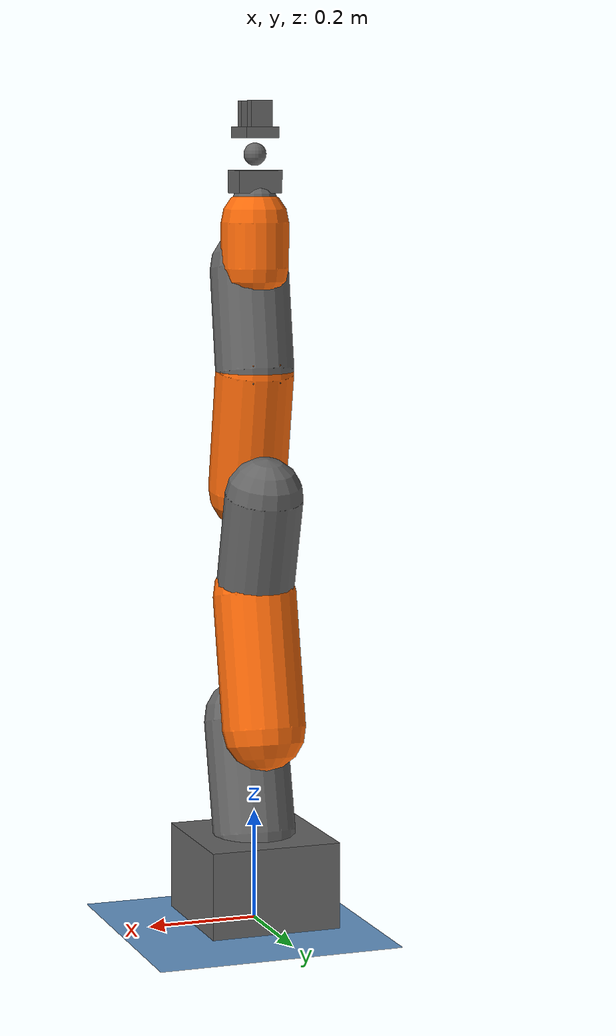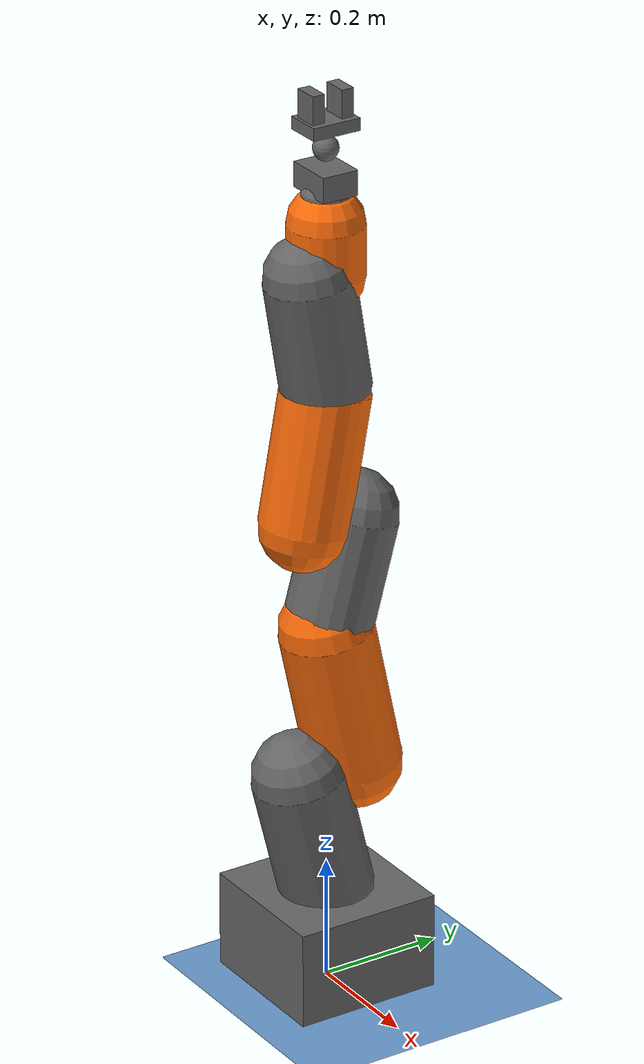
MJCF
<mujoco model="robocrane_mjx_simplified">

    <compiler autolimits="true" angle="radian" />

    <option timestep="0.001" gravity="0 0 -9.81" integrator="implicitfast" cone="elliptic" jacobian="sparse" />

    <statistic meansize="0.03" extent="0.3" center="0.3 0 0" />
    <default>
        <geom type="capsule"/>

        <default class="cardan">
            <joint damping="0.01" limited="true" range="-1.5708 1.5708" />
        </default>
    </default>

    <asset>
        <texture name="groundplane" type="2d" builtin="checker" rgb1="0.5 0.7 0.9" rgb2="0.3 0.5 0.7" mark="edge" markrgb="0.9 0.9 0.9" width="300" height="300" />
        <material name="groundplane" texture="groundplane" texrepeat="5 5" texuniform="true" reflectance="0.4" />
        <material name="orange" rgba="1 0.4235 0.03922 1" />
        <material name="gray" rgba="0.4 0.4 0.4 1" />
        <material name="gripper" rgba="0.2 0.8 0.2 1" />
    </asset>

    <worldbody>
        <body name="ground" mocap="false" pos="0 0 0">
            <!-- Ground plane -->
            <geom name="floor" type="plane" size="0 0 0.05" material="groundplane" />
            <light directional="true" pos="0 0 1.5" dir="0 0 -1" />

            <!-- IIWA Robot - matching simplified kinematics -->
            <body pos="0 0 0" name="iiwa/">
                <body name="iiwa/base" pos="0 0 0">
                    <inertial pos="0 0 0" mass="0" diaginertia="0 0 0" />
                    <geom name="base_geom" type="box" size="0.12 0.12 0.07875" pos="0 0 0.07875" material="gray" />

                    <!-- Link 1 -->
                    <body name="iiwa/iiwa_link_1" pos="0 0 0.1575">
                        <inertial pos="0 -0.01439 0.1025" quat="1 0 0 0" mass="6.495" diaginertia="0.06908 0.07111 0.02006" />
                        <joint name="iiwa/joint_1" pos="0 0 0" axis="0 0 1" limited="true" range="-2.967 2.967" />
                        <geom name="link1_geom" type="capsule" fromto="0 0 0 0 -0.05 0.2025" size="0.075" material="gray" />

                        <!-- Link 2 -->
                        <body name="iiwa/iiwa_link_2" pos="0 0 0.2025" quat="0 0 0.7071 0.7071">
                            <inertial pos="1.2e-05 0.06472 0.004804" quat="1 0 0 0" mass="8.807" diaginertia="0.08247 0.01641 0.08735" />
                            <joint name="iiwa/joint_2" pos="0 0 0" axis="0 0 1" limited="true" range="-2.094 2.094" />
                            <geom name="link2_geom" type="capsule" fromto="0 0 0.0513 0 0.2375 0" size="0.075" material="orange" />

                            <!-- Link 3 -->
                            <body name="iiwa/iiwa_link_3" pos="0 0.2375 0" quat="0 0 0.7071 0.7071">
                                <inertial pos="-0.000208 0.01601 0.08728" quat="1 0 0 0" mass="2.8" diaginertia="0.02302 0.02287 0.04545" />
                                <joint name="iiwa/joint_3" pos="0 0 0" axis="0 0 1" limited="true" range="-2.967 2.967" />
                                <geom name="link3_geom" type="capsule" fromto="0 0 0 0 0.05 0.1825" size="0.07" material="gray" />

                                <!-- Link 4 -->
                                <body name="iiwa/iiwa_link_4" pos="0 0 0.1825" quat="0.7071 0.7071 0 0">
                                    <inertial pos="-0.000203 0.09864 0.01148" quat="1 0 0 0" mass="5.283" diaginertia="0.04728 0.009647 0.04665" />
                                    <joint name="iiwa/joint_4" pos="0 0 0" axis="0 0 1" limited="true" range="-2.094 2.094" />
                                    <geom name="link4_geom" type="capsule" fromto="0 0 0.04 0 0.2175 0" size="0.07" material="orange" />

                                    <!-- Link 5 -->
                                    <body name="iiwa/iiwa_link_5" pos="0 0.2175 0" quat="0 0 0.7071 0.7071">
                                        <inertial pos="5.7e-05 0.01447 0.06294" mass="1.889" diaginertia="0.01384 0.01169 0.005719" />
                                        <joint name="iiwa/joint_5" pos="0 0 0" axis="0 0 1" limited="true" range="-2.967 2.967" />
                                        <geom name="link5_geom" type="capsule" fromto="0 0 0 0 0.03 0.1825" size="0.07" material="gray" />

                                        <!-- Link 6 -->
                                        <body name="iiwa/iiwa_link_6" pos="0 0 0.1825" quat="0.7071 0.7071 0 0">
                                            <inertial pos="0.000363 0.01698 -0.01973" quat="1 0 0 0" mass="2.32" diaginertia="0.007328 0.004776 0.006068" />
                                            <joint name="iiwa/joint_6" pos="0 0 0" axis="0 0 1" limited="true" range="-2.094 2.094" />
                                            <geom name="link6_geom" type="capsule" fromto="0 0 0 0 0.081 0" size="0.06" material="orange" />

                                            <!-- Link 7 -->
                                            <body name="iiwa/iiwa_link_7" pos="0 0.081 0" quat="0 0 0.7071 0.7071">
                                                <inertial pos="0.001904 -9.3e-05 0.01886" quat="1 0 0 0" mass="0.863" diaginertia="0.000884 0.000888 0.001105" />
                                                <joint name="iiwa/joint_7" pos="0 0 0" axis="0 0 1" limited="true" range="-3.054 3.054" />
                                                <geom name="link7_geom" type="capsule" size="0.04 0.035" material="gray" />

                                                <!-- Cardan Joint System -->
                                                <body pos="0 0 0.071" name="iiwa/cardan_joint/">
                                                    <!-- Cardan Top -->
                                                    <body name="iiwa/cardan_joint/cj_top" pos="0 0 0" quat="0.5 0.5 -0.5 -0.5">
                                                        <inertial pos="0.0135 -0 0.02238" quat="1 0 0 0" mass="0.5" diaginertia="0.000124 0.000378 0.000425" />
                                                        <geom name="cardan_top_geom" type="box" size="0.03 0.02 0.04" material="gray" />

                                                        <!-- Cardan Middle -->
                                                        <body name="iiwa/cardan_joint/cj_middle" pos="0 0.048 0" quat="0.7071 -0.7071 0 0">
                                                            <inertial pos="0 0 0" quat="1 0 0 0" mass="0.016" diaginertia="1e-06 1e-06 1e-06" />
                                                            <!-- Passive Joint 1 -->
                                                            <joint name="iiwa/cardan_joint/joint_cj1" pos="0 0 0" axis="-1 0 0" limited="true" range="-1 1" damping="0.005" />
                                                            <geom name="cardan_middle_geom" type="sphere" size="0.02" material="gray" />

                                                            <!-- Cardan Bottom -->
                                                            <body name="iiwa/cardan_joint/cj_bot" pos="0 0 0.028" quat="0.7071 0 0 -0.7071">
                                                                <inertial pos="0 0 0.05" quat="1 0 0 0" mass="1" diaginertia="0.0008 0.0008 0.001" />
                                                                <!-- Passive Joint 2 -->
                                                                <joint name="iiwa/cardan_joint/joint_cj2" pos="0 0 -0.028" axis="-1 0 0" limited="true" range="-1 1" damping="0.005" />

                                                                <!-- Simplified Gripper -->
                                                                <body pos="0 0 0.01" quat="0.707 0 0 0.707" name="iiwa/cardan_joint/ur_gripper/">
                                                                    <body name="iiwa/cardan_joint/ur_gripper/base_mount" pos="0 0 0">
                                                                        <inertial pos="0 0 0.02" mass="0.5" diaginertia="0.001 0.001 0.001" />
                                                                        <geom name="gripper_base" type="box" size="0.04 0.03 0.01" material="gray" />

                                                                        <!-- Gripper Fingers (Fixed for simplicity) -->
                                                                        <geom name="gripper_finger1" type="box" size="0.01 0.02 0.03" pos="0.025 0 0.025" material="gray" />
                                                                        <geom name="gripper_finger2" type="box" size="0.01 0.02 0.03" pos="-0.025 0 0.025" material="gray" />
                                                                    </body>
                                                                </body>
                                                            </body>
                                                        </body>
                                                    </body>
                                                </body>
                                            </body>
                                        </body>
                                    </body>
                                </body>
                            </body>
                        </body>
                    </body>
                </body>
            </body>
        </body>

        <camera name="train_cam" mode="fixed"
        pos="0. -1.5 2.5"
        euler="0.7 -0 0"
        fovy="45" />

    </worldbody>

    <actuator>
        <motor name="torq_j1" ctrllimited="true" ctrlrange="-176 176" joint="iiwa/joint_1" />
        <motor name="torq_j2" ctrllimited="true" ctrlrange="-176 176" joint="iiwa/joint_2" />
        <motor name="torq_j3" ctrllimited="true" ctrlrange="-110 110" joint="iiwa/joint_3" />
        <motor name="torq_j4" ctrllimited="true" ctrlrange="-110 110" joint="iiwa/joint_4" />
        <motor name="torq_j5" ctrllimited="true" ctrlrange="-110 110" joint="iiwa/joint_5" />
        <motor name="torq_j6" ctrllimited="true" ctrlrange="-40 40" joint="iiwa/joint_6" />
        <motor name="torq_j7" ctrllimited="true" ctrlrange="-40 40" joint="iiwa/joint_7" />
    </actuator>

    <contact>
        <exclude body1="iiwa/iiwa_link_5" body2="iiwa/iiwa_link_7"/>
        <exclude body1="iiwa/base" body2="iiwa/iiwa_link_1"/>
    </contact>

</mujoco>
